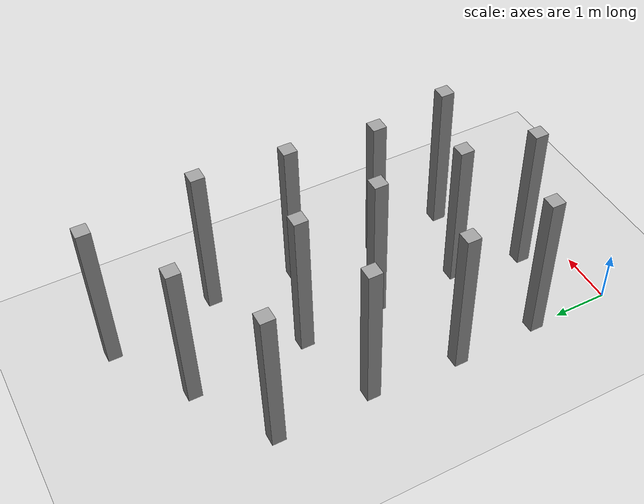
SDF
<sdf version="1.6">
 <world name="default">
  <model name="ground_plane">
   <static>1</static>
   <link name="link">
    <collision name="collision">
     <geometry><plane><normal>0 0 1</normal><size>100 100</size></plane></geometry>
     <surface><friction><ode><mu>100</mu><mu2>50</mu2></ode></friction></surface>
    </collision>
    <visual name="visual">
     <cast_shadows>0</cast_shadows>
     <geometry><plane><normal>0 0 1</normal><size>100 100</size></plane></geometry>
     <material>
      <script><uri>file://media/materials/scripts/gazebo.material</uri><name>Gazebo/Grey</name></script>
     </material>
    </visual>
   </link>
  </model>
  <model name="box_2_clone_1">
   <link name="link">
    <pose>0 0 1 0 -0 0</pose>
    <inertial>
     <mass>1</mass>
     <inertia><ixx>5.16667</ixx><ixy>0</ixy><ixz>0</ixz><iyy>5.16667</iyy><iyz>0</iyz><izz>5.16667</izz></inertia>
     <pose>0 0 1 0 -0 0</pose>
    </inertial>
    <visual name="ModelPreview_4::link::visual_1">
     <geometry><box><size>0.25 0.25 3</size></box></geometry>
     <material>
      <script><name>Gazebo/Grey</name><uri>file://media/materials/scripts/gazebo.material</uri></script>
      <ambient>0.3 0.3 0.3 1</ambient>
      <diffuse>0.7 0.7 0.7 1</diffuse>
      <specular>0.01 0.01 0.01 1</specular>
      <emissive>0 0 0 1</emissive>
      <shader type="vertex"><normal_map>__default__</normal_map></shader>
     </material>
    </visual>
    <visual name="visual">
     <geometry><box><size>0.25 0.25 3</size></box></geometry>
     <material>
      <script><name>Gazebo/Grey</name><uri>file://media/materials/scripts/gazebo.material</uri></script>
      <ambient>0.3 0.3 0.3 1</ambient>
      <diffuse>0.7 0.7 0.7 1</diffuse>
      <specular>0.01 0.01 0.01 1</specular>
      <emissive>0 0 0 1</emissive>
      <shader type="vertex"><normal_map>__default__</normal_map></shader>
     </material>
    </visual>
    <collision name="collision">
     <geometry><box><size>0.25 0.25 3</size></box></geometry>
     <surface>
      <friction>
       <ode><mu>1</mu><mu2>1</mu2><fdir1>0 0 0</fdir1><slip1>0</slip1><slip2>0</slip2></ode>
       <torsional>
        <coefficient>1</coefficient>
        <patch_radius>0</patch_radius>
        <surface_radius>0</surface_radius>
        <use_patch_radius>1</use_patch_radius>
        <ode><slip>0</slip></ode>
       </torsional>
      </friction>
      <bounce><restitution_coefficient>0</restitution_coefficient><threshold>1e+06</threshold></bounce>
      <contact>
       <collide_without_contact>0</collide_without_contact>
       <collide_without_contact_bitmask>1</collide_without_contact_bitmask>
       <collide_bitmask>1</collide_bitmask>
       <ode>
        <soft_cfm>0</soft_cfm>
        <soft_erp>0.2</soft_erp>
        <kp>1e+13</kp>
        <kd>1</kd>
        <max_vel>0.01</max_vel>
        <min_depth>0</min_depth>
       </ode>
       <bullet>
        <split_impulse>1</split_impulse>
        <split_impulse_penetration_threshold>-0.01</split_impulse_penetration_threshold>
        <soft_cfm>0</soft_cfm>
        <soft_erp>0.2</soft_erp>
        <kp>1e+13</kp>
        <kd>1</kd>
       </bullet>
      </contact>
     </surface>
    </collision>
   </link>
   <static>0</static>
   <pose>0.048313 1.49751 0.5 0 0 -0.000186</pose>
  </model>
  <model name="box_2_clone_2">
   <link name="link">
    <pose>0 0 1 0 -0 0</pose>
    <inertial>
     <mass>1</mass>
     <inertia><ixx>5.16667</ixx><ixy>0</ixy><ixz>0</ixz><iyy>5.16667</iyy><iyz>0</iyz><izz>5.16667</izz></inertia>
     <pose>0 0 1 0 -0 0</pose>
    </inertial>
    <visual name="ModelPreview_4::link::visual_1">
     <geometry><box><size>0.25 0.25 3</size></box></geometry>
     <material>
      <script><name>Gazebo/Grey</name><uri>file://media/materials/scripts/gazebo.material</uri></script>
      <ambient>0.3 0.3 0.3 1</ambient>
      <diffuse>0.7 0.7 0.7 1</diffuse>
      <specular>0.01 0.01 0.01 1</specular>
      <emissive>0 0 0 1</emissive>
      <shader type="vertex"><normal_map>__default__</normal_map></shader>
     </material>
    </visual>
    <visual name="visual">
     <geometry><box><size>0.25 0.25 3</size></box></geometry>
     <material>
      <script><name>Gazebo/Grey</name><uri>file://media/materials/scripts/gazebo.material</uri></script>
      <ambient>0.3 0.3 0.3 1</ambient>
      <diffuse>0.7 0.7 0.7 1</diffuse>
      <specular>0.01 0.01 0.01 1</specular>
      <emissive>0 0 0 1</emissive>
      <shader type="vertex"><normal_map>__default__</normal_map></shader>
     </material>
    </visual>
    <collision name="collision">
     <geometry><box><size>0.25 0.25 3</size></box></geometry>
     <surface>
      <friction>
       <ode><mu>1</mu><mu2>1</mu2><fdir1>0 0 0</fdir1><slip1>0</slip1><slip2>0</slip2></ode>
       <torsional>
        <coefficient>1</coefficient>
        <patch_radius>0</patch_radius>
        <surface_radius>0</surface_radius>
        <use_patch_radius>1</use_patch_radius>
        <ode><slip>0</slip></ode>
       </torsional>
      </friction>
      <bounce><restitution_coefficient>0</restitution_coefficient><threshold>1e+06</threshold></bounce>
      <contact>
       <collide_without_contact>0</collide_without_contact>
       <collide_without_contact_bitmask>1</collide_without_contact_bitmask>
       <collide_bitmask>1</collide_bitmask>
       <ode>
        <soft_cfm>0</soft_cfm>
        <soft_erp>0.2</soft_erp>
        <kp>1e+13</kp>
        <kd>1</kd>
        <max_vel>0.01</max_vel>
        <min_depth>0</min_depth>
       </ode>
       <bullet>
        <split_impulse>1</split_impulse>
        <split_impulse_penetration_threshold>-0.01</split_impulse_penetration_threshold>
        <soft_cfm>0</soft_cfm>
        <soft_erp>0.2</soft_erp>
        <kp>1e+13</kp>
        <kd>1</kd>
       </bullet>
      </contact>
     </surface>
    </collision>
   </link>
   <static>0</static>
   <pose>0.031845 3.07004 0.5 0 0 -0.000171</pose>
  </model>
  <model name="box_2_clone_3">
   <link name="link">
    <pose>0 0 1 0 -0 0</pose>
    <inertial>
     <mass>1</mass>
     <inertia><ixx>5.16667</ixx><ixy>0</ixy><ixz>0</ixz><iyy>5.16667</iyy><iyz>0</iyz><izz>5.16667</izz></inertia>
     <pose>0 0 1 0 -0 0</pose>
    </inertial>
    <visual name="ModelPreview_4::link::visual_1">
     <geometry><box><size>0.25 0.25 3</size></box></geometry>
     <material>
      <script><name>Gazebo/Grey</name><uri>file://media/materials/scripts/gazebo.material</uri></script>
      <ambient>0.3 0.3 0.3 1</ambient>
      <diffuse>0.7 0.7 0.7 1</diffuse>
      <specular>0.01 0.01 0.01 1</specular>
      <emissive>0 0 0 1</emissive>
      <shader type="vertex"><normal_map>__default__</normal_map></shader>
     </material>
    </visual>
    <visual name="visual">
     <geometry><box><size>0.25 0.25 3</size></box></geometry>
     <material>
      <script><name>Gazebo/Grey</name><uri>file://media/materials/scripts/gazebo.material</uri></script>
      <ambient>0.3 0.3 0.3 1</ambient>
      <diffuse>0.7 0.7 0.7 1</diffuse>
      <specular>0.01 0.01 0.01 1</specular>
      <emissive>0 0 0 1</emissive>
      <shader type="vertex"><normal_map>__default__</normal_map></shader>
     </material>
    </visual>
    <collision name="collision">
     <geometry><box><size>0.25 0.25 3</size></box></geometry>
     <surface>
      <friction>
       <ode><mu>1</mu><mu2>1</mu2><fdir1>0 0 0</fdir1><slip1>0</slip1><slip2>0</slip2></ode>
       <torsional>
        <coefficient>1</coefficient>
        <patch_radius>0</patch_radius>
        <surface_radius>0</surface_radius>
        <use_patch_radius>1</use_patch_radius>
        <ode><slip>0</slip></ode>
       </torsional>
      </friction>
      <bounce><restitution_coefficient>0</restitution_coefficient><threshold>1e+06</threshold></bounce>
      <contact>
       <collide_without_contact>0</collide_without_contact>
       <collide_without_contact_bitmask>1</collide_without_contact_bitmask>
       <collide_bitmask>1</collide_bitmask>
       <ode>
        <soft_cfm>0</soft_cfm>
        <soft_erp>0.2</soft_erp>
        <kp>1e+13</kp>
        <kd>1</kd>
        <max_vel>0.01</max_vel>
        <min_depth>0</min_depth>
       </ode>
       <bullet>
        <split_impulse>1</split_impulse>
        <split_impulse_penetration_threshold>-0.01</split_impulse_penetration_threshold>
        <soft_cfm>0</soft_cfm>
        <soft_erp>0.2</soft_erp>
        <kp>1e+13</kp>
        <kd>1</kd>
       </bullet>
      </contact>
     </surface>
    </collision>
   </link>
   <static>0</static>
   <pose>0.124936 4.72453 0.500001 1e-06 3e-06 -9.4e-05</pose>
  </model>
  <model name="box_2_clone_4">
   <link name="link">
    <pose>0 0 1 0 -0 0</pose>
    <inertial>
     <mass>1</mass>
     <inertia><ixx>5.16667</ixx><ixy>0</ixy><ixz>0</ixz><iyy>5.16667</iyy><iyz>0</iyz><izz>5.16667</izz></inertia>
     <pose>0 0 1 0 -0 0</pose>
    </inertial>
    <visual name="ModelPreview_4::link::visual_1">
     <geometry><box><size>0.25 0.25 3</size></box></geometry>
     <material>
      <script><name>Gazebo/Grey</name><uri>file://media/materials/scripts/gazebo.material</uri></script>
      <ambient>0.3 0.3 0.3 1</ambient>
      <diffuse>0.7 0.7 0.7 1</diffuse>
      <specular>0.01 0.01 0.01 1</specular>
      <emissive>0 0 0 1</emissive>
      <shader type="vertex"><normal_map>__default__</normal_map></shader>
     </material>
    </visual>
    <visual name="visual">
     <geometry><box><size>0.25 0.25 3</size></box></geometry>
     <material>
      <script><name>Gazebo/Grey</name><uri>file://media/materials/scripts/gazebo.material</uri></script>
      <ambient>0.3 0.3 0.3 1</ambient>
      <diffuse>0.7 0.7 0.7 1</diffuse>
      <specular>0.01 0.01 0.01 1</specular>
      <emissive>0 0 0 1</emissive>
      <shader type="vertex"><normal_map>__default__</normal_map></shader>
     </material>
    </visual>
    <collision name="collision">
     <geometry><box><size>0.25 0.25 3</size></box></geometry>
     <surface>
      <friction>
       <ode><mu>1</mu><mu2>1</mu2><fdir1>0 0 0</fdir1><slip1>0</slip1><slip2>0</slip2></ode>
       <torsional>
        <coefficient>1</coefficient>
        <patch_radius>0</patch_radius>
        <surface_radius>0</surface_radius>
        <use_patch_radius>1</use_patch_radius>
        <ode><slip>0</slip></ode>
       </torsional>
      </friction>
      <bounce><restitution_coefficient>0</restitution_coefficient><threshold>1e+06</threshold></bounce>
      <contact>
       <collide_without_contact>0</collide_without_contact>
       <collide_without_contact_bitmask>1</collide_without_contact_bitmask>
       <collide_bitmask>1</collide_bitmask>
       <ode>
        <soft_cfm>0</soft_cfm>
        <soft_erp>0.2</soft_erp>
        <kp>1e+13</kp>
        <kd>1</kd>
        <max_vel>0.01</max_vel>
        <min_depth>0</min_depth>
       </ode>
       <bullet>
        <split_impulse>1</split_impulse>
        <split_impulse_penetration_threshold>-0.01</split_impulse_penetration_threshold>
        <soft_cfm>0</soft_cfm>
        <soft_erp>0.2</soft_erp>
        <kp>1e+13</kp>
        <kd>1</kd>
       </bullet>
      </contact>
     </surface>
    </collision>
   </link>
   <static>0</static>
   <pose>0.097978 6.47985 0.5 1e-06 -2e-06 -0.000149</pose>
  </model>
  <model name="box_2_clone_1_clone">
   <link name="link">
    <pose>0 0 1 0 -0 0</pose>
    <inertial>
     <mass>1</mass>
     <inertia><ixx>5.16667</ixx><ixy>0</ixy><ixz>0</ixz><iyy>5.16667</iyy><iyz>0</iyz><izz>5.16667</izz></inertia>
     <pose>0 0 1 0 -0 0</pose>
    </inertial>
    <visual name="ModelPreview_4::link::visual_1">
     <geometry><box><size>0.25 0.25 3</size></box></geometry>
     <material>
      <script><name>Gazebo/Grey</name><uri>file://media/materials/scripts/gazebo.material</uri></script>
      <ambient>0.3 0.3 0.3 1</ambient>
      <diffuse>0.7 0.7 0.7 1</diffuse>
      <specular>0.01 0.01 0.01 1</specular>
      <emissive>0 0 0 1</emissive>
      <shader type="vertex"><normal_map>__default__</normal_map></shader>
     </material>
    </visual>
    <visual name="visual">
     <geometry><box><size>0.25 0.25 3</size></box></geometry>
     <material>
      <script><name>Gazebo/Grey</name><uri>file://media/materials/scripts/gazebo.material</uri></script>
      <ambient>0.3 0.3 0.3 1</ambient>
      <diffuse>0.7 0.7 0.7 1</diffuse>
      <specular>0.01 0.01 0.01 1</specular>
      <emissive>0 0 0 1</emissive>
      <shader type="vertex"><normal_map>__default__</normal_map></shader>
     </material>
    </visual>
    <collision name="collision">
     <geometry><box><size>0.25 0.25 3</size></box></geometry>
     <surface>
      <friction>
       <ode><mu>1</mu><mu2>1</mu2><fdir1>0 0 0</fdir1><slip1>0</slip1><slip2>0</slip2></ode>
       <torsional>
        <coefficient>1</coefficient>
        <patch_radius>0</patch_radius>
        <surface_radius>0</surface_radius>
        <use_patch_radius>1</use_patch_radius>
        <ode><slip>0</slip></ode>
       </torsional>
      </friction>
      <bounce><restitution_coefficient>0</restitution_coefficient><threshold>1e+06</threshold></bounce>
      <contact>
       <collide_without_contact>0</collide_without_contact>
       <collide_without_contact_bitmask>1</collide_without_contact_bitmask>
       <collide_bitmask>1</collide_bitmask>
       <ode>
        <soft_cfm>0</soft_cfm>
        <soft_erp>0.2</soft_erp>
        <kp>1e+13</kp>
        <kd>1</kd>
        <max_vel>0.01</max_vel>
        <min_depth>0</min_depth>
       </ode>
       <bullet>
        <split_impulse>1</split_impulse>
        <split_impulse_penetration_threshold>-0.01</split_impulse_penetration_threshold>
        <soft_cfm>0</soft_cfm>
        <soft_erp>0.2</soft_erp>
        <kp>1e+13</kp>
        <kd>1</kd>
       </bullet>
      </contact>
     </surface>
    </collision>
   </link>
   <static>0</static>
   <pose>1.77319 2.07182 0.5 1e-06 -0 -0.000176</pose>
  </model>
  <model name="box_2_clone_1_clone_0">
   <link name="link">
    <pose>0 0 1 0 -0 0</pose>
    <inertial>
     <mass>1</mass>
     <inertia><ixx>5.16667</ixx><ixy>0</ixy><ixz>0</ixz><iyy>5.16667</iyy><iyz>0</iyz><izz>5.16667</izz></inertia>
     <pose>0 0 1 0 -0 0</pose>
    </inertial>
    <visual name="ModelPreview_4::link::visual_1">
     <geometry><box><size>0.25 0.25 3</size></box></geometry>
     <material>
      <script><name>Gazebo/Grey</name><uri>file://media/materials/scripts/gazebo.material</uri></script>
      <ambient>0.3 0.3 0.3 1</ambient>
      <diffuse>0.7 0.7 0.7 1</diffuse>
      <specular>0.01 0.01 0.01 1</specular>
      <emissive>0 0 0 1</emissive>
      <shader type="vertex"><normal_map>__default__</normal_map></shader>
     </material>
    </visual>
    <visual name="visual">
     <geometry><box><size>0.25 0.25 3</size></box></geometry>
     <material>
      <script><name>Gazebo/Grey</name><uri>file://media/materials/scripts/gazebo.material</uri></script>
      <ambient>0.3 0.3 0.3 1</ambient>
      <diffuse>0.7 0.7 0.7 1</diffuse>
      <specular>0.01 0.01 0.01 1</specular>
      <emissive>0 0 0 1</emissive>
      <shader type="vertex"><normal_map>__default__</normal_map></shader>
     </material>
    </visual>
    <collision name="collision">
     <geometry><box><size>0.25 0.25 3</size></box></geometry>
     <surface>
      <friction>
       <ode><mu>1</mu><mu2>1</mu2><fdir1>0 0 0</fdir1><slip1>0</slip1><slip2>0</slip2></ode>
       <torsional>
        <coefficient>1</coefficient>
        <patch_radius>0</patch_radius>
        <surface_radius>0</surface_radius>
        <use_patch_radius>1</use_patch_radius>
        <ode><slip>0</slip></ode>
       </torsional>
      </friction>
      <bounce><restitution_coefficient>0</restitution_coefficient><threshold>1e+06</threshold></bounce>
      <contact>
       <collide_without_contact>0</collide_without_contact>
       <collide_without_contact_bitmask>1</collide_without_contact_bitmask>
       <collide_bitmask>1</collide_bitmask>
       <ode>
        <soft_cfm>0</soft_cfm>
        <soft_erp>0.2</soft_erp>
        <kp>1e+13</kp>
        <kd>1</kd>
        <max_vel>0.01</max_vel>
        <min_depth>0</min_depth>
       </ode>
       <bullet>
        <split_impulse>1</split_impulse>
        <split_impulse_penetration_threshold>-0.01</split_impulse_penetration_threshold>
        <soft_cfm>0</soft_cfm>
        <soft_erp>0.2</soft_erp>
        <kp>1e+13</kp>
        <kd>1</kd>
       </bullet>
      </contact>
     </surface>
    </collision>
   </link>
   <static>0</static>
   <pose>1.747 3.70529 0.5 -0 3e-06 -0.000185</pose>
  </model>
  <model name="box_2_clone_1_clone_1">
   <link name="link">
    <pose>0 0 1 0 -0 0</pose>
    <inertial>
     <mass>1</mass>
     <inertia><ixx>5.16667</ixx><ixy>0</ixy><ixz>0</ixz><iyy>5.16667</iyy><iyz>0</iyz><izz>5.16667</izz></inertia>
     <pose>0 0 1 0 -0 0</pose>
    </inertial>
    <visual name="ModelPreview_4::link::visual_1">
     <geometry><box><size>0.25 0.25 3</size></box></geometry>
     <material>
      <script><name>Gazebo/Grey</name><uri>file://media/materials/scripts/gazebo.material</uri></script>
      <ambient>0.3 0.3 0.3 1</ambient>
      <diffuse>0.7 0.7 0.7 1</diffuse>
      <specular>0.01 0.01 0.01 1</specular>
      <emissive>0 0 0 1</emissive>
      <shader type="vertex"><normal_map>__default__</normal_map></shader>
     </material>
    </visual>
    <visual name="visual">
     <geometry><box><size>0.25 0.25 3</size></box></geometry>
     <material>
      <script><name>Gazebo/Grey</name><uri>file://media/materials/scripts/gazebo.material</uri></script>
      <ambient>0.3 0.3 0.3 1</ambient>
      <diffuse>0.7 0.7 0.7 1</diffuse>
      <specular>0.01 0.01 0.01 1</specular>
      <emissive>0 0 0 1</emissive>
      <shader type="vertex"><normal_map>__default__</normal_map></shader>
     </material>
    </visual>
    <collision name="collision">
     <geometry><box><size>0.25 0.25 3</size></box></geometry>
     <surface>
      <friction>
       <ode><mu>1</mu><mu2>1</mu2><fdir1>0 0 0</fdir1><slip1>0</slip1><slip2>0</slip2></ode>
       <torsional>
        <coefficient>1</coefficient>
        <patch_radius>0</patch_radius>
        <surface_radius>0</surface_radius>
        <use_patch_radius>1</use_patch_radius>
        <ode><slip>0</slip></ode>
       </torsional>
      </friction>
      <bounce><restitution_coefficient>0</restitution_coefficient><threshold>1e+06</threshold></bounce>
      <contact>
       <collide_without_contact>0</collide_without_contact>
       <collide_without_contact_bitmask>1</collide_without_contact_bitmask>
       <collide_bitmask>1</collide_bitmask>
       <ode>
        <soft_cfm>0</soft_cfm>
        <soft_erp>0.2</soft_erp>
        <kp>1e+13</kp>
        <kd>1</kd>
        <max_vel>0.01</max_vel>
        <min_depth>0</min_depth>
       </ode>
       <bullet>
        <split_impulse>1</split_impulse>
        <split_impulse_penetration_threshold>-0.01</split_impulse_penetration_threshold>
        <soft_cfm>0</soft_cfm>
        <soft_erp>0.2</soft_erp>
        <kp>1e+13</kp>
        <kd>1</kd>
       </bullet>
      </contact>
     </surface>
    </collision>
   </link>
   <static>0</static>
   <pose>1.6256 5.19207 0.500001 -4e-06 -1e-06 -0.000196</pose>
  </model>
  <model name="box_2_clone_1_clone_2">
   <link name="link">
    <pose>0 0 1 0 -0 0</pose>
    <inertial>
     <mass>1</mass>
     <inertia><ixx>5.16667</ixx><ixy>0</ixy><ixz>0</ixz><iyy>5.16667</iyy><iyz>0</iyz><izz>5.16667</izz></inertia>
     <pose>0 0 1 0 -0 0</pose>
    </inertial>
    <visual name="ModelPreview_4::link::visual_1">
     <geometry><box><size>0.25 0.25 3</size></box></geometry>
     <material>
      <script><name>Gazebo/Grey</name><uri>file://media/materials/scripts/gazebo.material</uri></script>
      <ambient>0.3 0.3 0.3 1</ambient>
      <diffuse>0.7 0.7 0.7 1</diffuse>
      <specular>0.01 0.01 0.01 1</specular>
      <emissive>0 0 0 1</emissive>
      <shader type="vertex"><normal_map>__default__</normal_map></shader>
     </material>
    </visual>
    <visual name="visual">
     <geometry><box><size>0.25 0.25 3</size></box></geometry>
     <material>
      <script><name>Gazebo/Grey</name><uri>file://media/materials/scripts/gazebo.material</uri></script>
      <ambient>0.3 0.3 0.3 1</ambient>
      <diffuse>0.7 0.7 0.7 1</diffuse>
      <specular>0.01 0.01 0.01 1</specular>
      <emissive>0 0 0 1</emissive>
      <shader type="vertex"><normal_map>__default__</normal_map></shader>
     </material>
    </visual>
    <collision name="collision">
     <geometry><box><size>0.25 0.25 3</size></box></geometry>
     <surface>
      <friction>
       <ode><mu>1</mu><mu2>1</mu2><fdir1>0 0 0</fdir1><slip1>0</slip1><slip2>0</slip2></ode>
       <torsional>
        <coefficient>1</coefficient>
        <patch_radius>0</patch_radius>
        <surface_radius>0</surface_radius>
        <use_patch_radius>1</use_patch_radius>
        <ode><slip>0</slip></ode>
       </torsional>
      </friction>
      <bounce><restitution_coefficient>0</restitution_coefficient><threshold>1e+06</threshold></bounce>
      <contact>
       <collide_without_contact>0</collide_without_contact>
       <collide_without_contact_bitmask>1</collide_without_contact_bitmask>
       <collide_bitmask>1</collide_bitmask>
       <ode>
        <soft_cfm>0</soft_cfm>
        <soft_erp>0.2</soft_erp>
        <kp>1e+13</kp>
        <kd>1</kd>
        <max_vel>0.01</max_vel>
        <min_depth>0</min_depth>
       </ode>
       <bullet>
        <split_impulse>1</split_impulse>
        <split_impulse_penetration_threshold>-0.01</split_impulse_penetration_threshold>
        <soft_cfm>0</soft_cfm>
        <soft_erp>0.2</soft_erp>
        <kp>1e+13</kp>
        <kd>1</kd>
       </bullet>
      </contact>
     </surface>
    </collision>
   </link>
   <static>0</static>
   <pose>1.52668 0.763108 0.5 0 0 -0.000189</pose>
  </model>
  <model name="box_2_clone_1_clone_8">
   <link name="link">
    <pose>0 0 1 0 -0 0</pose>
    <inertial>
     <mass>1</mass>
     <inertia><ixx>5.16667</ixx><ixy>0</ixy><ixz>0</ixz><iyy>5.16667</iyy><iyz>0</iyz><izz>5.16667</izz></inertia>
     <pose>0 0 1 0 -0 0</pose>
    </inertial>
    <visual name="ModelPreview_4::link::visual_1">
     <geometry><box><size>0.25 0.25 3</size></box></geometry>
     <material>
      <script><name>Gazebo/Grey</name><uri>file://media/materials/scripts/gazebo.material</uri></script>
      <ambient>0.3 0.3 0.3 1</ambient>
      <diffuse>0.7 0.7 0.7 1</diffuse>
      <specular>0.01 0.01 0.01 1</specular>
      <emissive>0 0 0 1</emissive>
      <shader type="vertex"><normal_map>__default__</normal_map></shader>
     </material>
    </visual>
    <visual name="visual">
     <geometry><box><size>0.25 0.25 3</size></box></geometry>
     <material>
      <script><name>Gazebo/Grey</name><uri>file://media/materials/scripts/gazebo.material</uri></script>
      <ambient>0.3 0.3 0.3 1</ambient>
      <diffuse>0.7 0.7 0.7 1</diffuse>
      <specular>0.01 0.01 0.01 1</specular>
      <emissive>0 0 0 1</emissive>
      <shader type="vertex"><normal_map>__default__</normal_map></shader>
     </material>
    </visual>
    <collision name="collision">
     <geometry><box><size>0.25 0.25 3</size></box></geometry>
     <surface>
      <friction>
       <ode><mu>1</mu><mu2>1</mu2><fdir1>0 0 0</fdir1><slip1>0</slip1><slip2>0</slip2></ode>
       <torsional>
        <coefficient>1</coefficient>
        <patch_radius>0</patch_radius>
        <surface_radius>0</surface_radius>
        <use_patch_radius>1</use_patch_radius>
        <ode><slip>0</slip></ode>
       </torsional>
      </friction>
      <bounce><restitution_coefficient>0</restitution_coefficient><threshold>1e+06</threshold></bounce>
      <contact>
       <collide_without_contact>0</collide_without_contact>
       <collide_without_contact_bitmask>1</collide_without_contact_bitmask>
       <collide_bitmask>1</collide_bitmask>
       <ode>
        <soft_cfm>0</soft_cfm>
        <soft_erp>0.2</soft_erp>
        <kp>1e+13</kp>
        <kd>1</kd>
        <max_vel>0.01</max_vel>
        <min_depth>0</min_depth>
       </ode>
       <bullet>
        <split_impulse>1</split_impulse>
        <split_impulse_penetration_threshold>-0.01</split_impulse_penetration_threshold>
        <soft_cfm>0</soft_cfm>
        <soft_erp>0.2</soft_erp>
        <kp>1e+13</kp>
        <kd>1</kd>
       </bullet>
      </contact>
     </surface>
    </collision>
   </link>
   <static>0</static>
   <pose>1.54617 7.31486 0.5 0 -1e-06 -0.000184</pose>
  </model>
  <model name="box_2_clone_1_clone_14">
   <link name="link">
    <pose>0 0 1 0 -0 0</pose>
    <inertial>
     <mass>1</mass>
     <inertia><ixx>5.16667</ixx><ixy>0</ixy><ixz>0</ixz><iyy>5.16667</iyy><iyz>0</iyz><izz>5.16667</izz></inertia>
     <pose>0 0 1 0 -0 0</pose>
    </inertial>
    <visual name="ModelPreview_4::link::visual_1">
     <geometry><box><size>0.25 0.25 3</size></box></geometry>
     <material>
      <script><name>Gazebo/Grey</name><uri>file://media/materials/scripts/gazebo.material</uri></script>
      <ambient>0.3 0.3 0.3 1</ambient>
      <diffuse>0.7 0.7 0.7 1</diffuse>
      <specular>0.01 0.01 0.01 1</specular>
      <emissive>0 0 0 1</emissive>
      <shader type="vertex"><normal_map>__default__</normal_map></shader>
     </material>
    </visual>
    <visual name="visual">
     <geometry><box><size>0.25 0.25 3</size></box></geometry>
     <material>
      <script><name>Gazebo/Grey</name><uri>file://media/materials/scripts/gazebo.material</uri></script>
      <ambient>0.3 0.3 0.3 1</ambient>
      <diffuse>0.7 0.7 0.7 1</diffuse>
      <specular>0.01 0.01 0.01 1</specular>
      <emissive>0 0 0 1</emissive>
      <shader type="vertex"><normal_map>__default__</normal_map></shader>
     </material>
    </visual>
    <collision name="collision">
     <geometry><box><size>0.25 0.25 3</size></box></geometry>
     <surface>
      <friction>
       <ode><mu>1</mu><mu2>1</mu2><fdir1>0 0 0</fdir1><slip1>0</slip1><slip2>0</slip2></ode>
       <torsional>
        <coefficient>1</coefficient>
        <patch_radius>0</patch_radius>
        <surface_radius>0</surface_radius>
        <use_patch_radius>1</use_patch_radius>
        <ode><slip>0</slip></ode>
       </torsional>
      </friction>
      <bounce><restitution_coefficient>0</restitution_coefficient><threshold>1e+06</threshold></bounce>
      <contact>
       <collide_without_contact>0</collide_without_contact>
       <collide_without_contact_bitmask>1</collide_without_contact_bitmask>
       <collide_bitmask>1</collide_bitmask>
       <ode>
        <soft_cfm>0</soft_cfm>
        <soft_erp>0.2</soft_erp>
        <kp>1e+13</kp>
        <kd>1</kd>
        <max_vel>0.01</max_vel>
        <min_depth>0</min_depth>
       </ode>
       <bullet>
        <split_impulse>1</split_impulse>
        <split_impulse_penetration_threshold>-0.01</split_impulse_penetration_threshold>
        <soft_cfm>0</soft_cfm>
        <soft_erp>0.2</soft_erp>
        <kp>1e+13</kp>
        <kd>1</kd>
       </bullet>
      </contact>
     </surface>
    </collision>
   </link>
   <static>0</static>
   <pose>3.22169 1.54591 0.5 0 0 -0.000156</pose>
  </model>
  <model name="box_2_clone_1_clone_15">
   <link name="link">
    <pose>0 0 1 0 -0 0</pose>
    <inertial>
     <mass>1</mass>
     <inertia><ixx>5.16667</ixx><ixy>0</ixy><ixz>0</ixz><iyy>5.16667</iyy><iyz>0</iyz><izz>5.16667</izz></inertia>
     <pose>0 0 1 0 -0 0</pose>
    </inertial>
    <visual name="ModelPreview_4::link::visual_1">
     <geometry><box><size>0.25 0.25 3</size></box></geometry>
     <material>
      <script><name>Gazebo/Grey</name><uri>file://media/materials/scripts/gazebo.material</uri></script>
      <ambient>0.3 0.3 0.3 1</ambient>
      <diffuse>0.7 0.7 0.7 1</diffuse>
      <specular>0.01 0.01 0.01 1</specular>
      <emissive>0 0 0 1</emissive>
      <shader type="vertex"><normal_map>__default__</normal_map></shader>
     </material>
    </visual>
    <visual name="visual">
     <geometry><box><size>0.25 0.25 3</size></box></geometry>
     <material>
      <script><name>Gazebo/Grey</name><uri>file://media/materials/scripts/gazebo.material</uri></script>
      <ambient>0.3 0.3 0.3 1</ambient>
      <diffuse>0.7 0.7 0.7 1</diffuse>
      <specular>0.01 0.01 0.01 1</specular>
      <emissive>0 0 0 1</emissive>
      <shader type="vertex"><normal_map>__default__</normal_map></shader>
     </material>
    </visual>
    <collision name="collision">
     <geometry><box><size>0.25 0.25 3</size></box></geometry>
     <surface>
      <friction>
       <ode><mu>1</mu><mu2>1</mu2><fdir1>0 0 0</fdir1><slip1>0</slip1><slip2>0</slip2></ode>
       <torsional>
        <coefficient>1</coefficient>
        <patch_radius>0</patch_radius>
        <surface_radius>0</surface_radius>
        <use_patch_radius>1</use_patch_radius>
        <ode><slip>0</slip></ode>
       </torsional>
      </friction>
      <bounce><restitution_coefficient>0</restitution_coefficient><threshold>1e+06</threshold></bounce>
      <contact>
       <collide_without_contact>0</collide_without_contact>
       <collide_without_contact_bitmask>1</collide_without_contact_bitmask>
       <collide_bitmask>1</collide_bitmask>
       <ode>
        <soft_cfm>0</soft_cfm>
        <soft_erp>0.2</soft_erp>
        <kp>1e+13</kp>
        <kd>1</kd>
        <max_vel>0.01</max_vel>
        <min_depth>0</min_depth>
       </ode>
       <bullet>
        <split_impulse>1</split_impulse>
        <split_impulse_penetration_threshold>-0.01</split_impulse_penetration_threshold>
        <soft_cfm>0</soft_cfm>
        <soft_erp>0.2</soft_erp>
        <kp>1e+13</kp>
        <kd>1</kd>
       </bullet>
      </contact>
     </surface>
    </collision>
   </link>
   <static>0</static>
   <pose>2.98701 3.03263 0.5 1e-06 0 -0.000181</pose>
  </model>
  <model name="box_2_clone_1_clone_16">
   <link name="link">
    <pose>0 0 1 0 -0 0</pose>
    <inertial>
     <mass>1</mass>
     <inertia><ixx>5.16667</ixx><ixy>0</ixy><ixz>0</ixz><iyy>5.16667</iyy><iyz>0</iyz><izz>5.16667</izz></inertia>
     <pose>0 0 1 0 -0 0</pose>
    </inertial>
    <visual name="ModelPreview_4::link::visual_1">
     <geometry><box><size>0.25 0.25 3</size></box></geometry>
     <material>
      <script><name>Gazebo/Grey</name><uri>file://media/materials/scripts/gazebo.material</uri></script>
      <ambient>0.3 0.3 0.3 1</ambient>
      <diffuse>0.7 0.7 0.7 1</diffuse>
      <specular>0.01 0.01 0.01 1</specular>
      <emissive>0 0 0 1</emissive>
      <shader type="vertex"><normal_map>__default__</normal_map></shader>
     </material>
    </visual>
    <visual name="visual">
     <geometry><box><size>0.25 0.25 3</size></box></geometry>
     <material>
      <script><name>Gazebo/Grey</name><uri>file://media/materials/scripts/gazebo.material</uri></script>
      <ambient>0.3 0.3 0.3 1</ambient>
      <diffuse>0.7 0.7 0.7 1</diffuse>
      <specular>0.01 0.01 0.01 1</specular>
      <emissive>0 0 0 1</emissive>
      <shader type="vertex"><normal_map>__default__</normal_map></shader>
     </material>
    </visual>
    <collision name="collision">
     <geometry><box><size>0.25 0.25 3</size></box></geometry>
     <surface>
      <friction>
       <ode><mu>1</mu><mu2>1</mu2><fdir1>0 0 0</fdir1><slip1>0</slip1><slip2>0</slip2></ode>
       <torsional>
        <coefficient>1</coefficient>
        <patch_radius>0</patch_radius>
        <surface_radius>0</surface_radius>
        <use_patch_radius>1</use_patch_radius>
        <ode><slip>0</slip></ode>
       </torsional>
      </friction>
      <bounce><restitution_coefficient>0</restitution_coefficient><threshold>1e+06</threshold></bounce>
      <contact>
       <collide_without_contact>0</collide_without_contact>
       <collide_without_contact_bitmask>1</collide_without_contact_bitmask>
       <collide_bitmask>1</collide_bitmask>
       <ode>
        <soft_cfm>0</soft_cfm>
        <soft_erp>0.2</soft_erp>
        <kp>1e+13</kp>
        <kd>1</kd>
        <max_vel>0.01</max_vel>
        <min_depth>0</min_depth>
       </ode>
       <bullet>
        <split_impulse>1</split_impulse>
        <split_impulse_penetration_threshold>-0.01</split_impulse_penetration_threshold>
        <soft_cfm>0</soft_cfm>
        <soft_erp>0.2</soft_erp>
        <kp>1e+13</kp>
        <kd>1</kd>
       </bullet>
      </contact>
     </surface>
    </collision>
   </link>
   <static>0</static>
   <pose>3.15684 4.61629 0.500002 1e-06 1.8e-05 -0.00017</pose>
  </model>
  <model name="box_2_clone_1_clone_17">
   <link name="link">
    <pose>0 0 1 0 -0 0</pose>
    <inertial>
     <mass>1</mass>
     <inertia><ixx>5.16667</ixx><ixy>0</ixy><ixz>0</ixz><iyy>5.16667</iyy><iyz>0</iyz><izz>5.16667</izz></inertia>
     <pose>0 0 1 0 -0 0</pose>
    </inertial>
    <visual name="ModelPreview_4::link::visual_1">
     <geometry><box><size>0.25 0.25 3</size></box></geometry>
     <material>
      <script><name>Gazebo/Grey</name><uri>file://media/materials/scripts/gazebo.material</uri></script>
      <ambient>0.3 0.3 0.3 1</ambient>
      <diffuse>0.7 0.7 0.7 1</diffuse>
      <specular>0.01 0.01 0.01 1</specular>
      <emissive>0 0 0 1</emissive>
      <shader type="vertex"><normal_map>__default__</normal_map></shader>
     </material>
    </visual>
    <visual name="visual">
     <geometry><box><size>0.25 0.25 3</size></box></geometry>
     <material>
      <script><name>Gazebo/Grey</name><uri>file://media/materials/scripts/gazebo.material</uri></script>
      <ambient>0.3 0.3 0.3 1</ambient>
      <diffuse>0.7 0.7 0.7 1</diffuse>
      <specular>0.01 0.01 0.01 1</specular>
      <emissive>0 0 0 1</emissive>
      <shader type="vertex"><normal_map>__default__</normal_map></shader>
     </material>
    </visual>
    <collision name="collision">
     <geometry><box><size>0.25 0.25 3</size></box></geometry>
     <surface>
      <friction>
       <ode><mu>1</mu><mu2>1</mu2><fdir1>0 0 0</fdir1><slip1>0</slip1><slip2>0</slip2></ode>
       <torsional>
        <coefficient>1</coefficient>
        <patch_radius>0</patch_radius>
        <surface_radius>0</surface_radius>
        <use_patch_radius>1</use_patch_radius>
        <ode><slip>0</slip></ode>
       </torsional>
      </friction>
      <bounce><restitution_coefficient>0</restitution_coefficient><threshold>1e+06</threshold></bounce>
      <contact>
       <collide_without_contact>0</collide_without_contact>
       <collide_without_contact_bitmask>1</collide_without_contact_bitmask>
       <collide_bitmask>1</collide_bitmask>
       <ode>
        <soft_cfm>0</soft_cfm>
        <soft_erp>0.2</soft_erp>
        <kp>1e+13</kp>
        <kd>1</kd>
        <max_vel>0.01</max_vel>
        <min_depth>0</min_depth>
       </ode>
       <bullet>
        <split_impulse>1</split_impulse>
        <split_impulse_penetration_threshold>-0.01</split_impulse_penetration_threshold>
        <soft_cfm>0</soft_cfm>
        <soft_erp>0.2</soft_erp>
        <kp>1e+13</kp>
        <kd>1</kd>
       </bullet>
      </contact>
     </surface>
    </collision>
   </link>
   <static>0</static>
   <pose>3.29544 6.19424 0.500003 -1e-06 -2.3e-05 -0.000166</pose>
  </model>
  <model name="box_2_clone_1_clone_18">
   <link name="link">
    <pose>0 0 1 0 -0 0</pose>
    <inertial>
     <mass>1</mass>
     <inertia><ixx>5.16667</ixx><ixy>0</ixy><ixz>0</ixz><iyy>5.16667</iyy><iyz>0</iyz><izz>5.16667</izz></inertia>
     <pose>0 0 1 0 -0 0</pose>
    </inertial>
    <visual name="ModelPreview_4::link::visual_1">
     <geometry><box><size>0.25 0.25 3</size></box></geometry>
     <material>
      <script><name>Gazebo/Grey</name><uri>file://media/materials/scripts/gazebo.material</uri></script>
      <ambient>0.3 0.3 0.3 1</ambient>
      <diffuse>0.7 0.7 0.7 1</diffuse>
      <specular>0.01 0.01 0.01 1</specular>
      <emissive>0 0 0 1</emissive>
      <shader type="vertex"><normal_map>__default__</normal_map></shader>
     </material>
    </visual>
    <visual name="visual">
     <geometry><box><size>0.25 0.25 3</size></box></geometry>
     <material>
      <script><name>Gazebo/Grey</name><uri>file://media/materials/scripts/gazebo.material</uri></script>
      <ambient>0.3 0.3 0.3 1</ambient>
      <diffuse>0.7 0.7 0.7 1</diffuse>
      <specular>0.01 0.01 0.01 1</specular>
      <emissive>0 0 0 1</emissive>
      <shader type="vertex"><normal_map>__default__</normal_map></shader>
     </material>
    </visual>
    <collision name="collision">
     <geometry><box><size>0.25 0.25 3</size></box></geometry>
     <surface>
      <friction>
       <ode><mu>1</mu><mu2>1</mu2><fdir1>0 0 0</fdir1><slip1>0</slip1><slip2>0</slip2></ode>
       <torsional>
        <coefficient>1</coefficient>
        <patch_radius>0</patch_radius>
        <surface_radius>0</surface_radius>
        <use_patch_radius>1</use_patch_radius>
        <ode><slip>0</slip></ode>
       </torsional>
      </friction>
      <bounce><restitution_coefficient>0</restitution_coefficient><threshold>1e+06</threshold></bounce>
      <contact>
       <collide_without_contact>0</collide_without_contact>
       <collide_without_contact_bitmask>1</collide_without_contact_bitmask>
       <collide_bitmask>1</collide_bitmask>
       <ode>
        <soft_cfm>0</soft_cfm>
        <soft_erp>0.2</soft_erp>
        <kp>1e+13</kp>
        <kd>1</kd>
        <max_vel>0.01</max_vel>
        <min_depth>0</min_depth>
       </ode>
       <bullet>
        <split_impulse>1</split_impulse>
        <split_impulse_penetration_threshold>-0.01</split_impulse_penetration_threshold>
        <soft_cfm>0</soft_cfm>
        <soft_erp>0.2</soft_erp>
        <kp>1e+13</kp>
        <kd>1</kd>
       </bullet>
      </contact>
     </surface>
    </collision>
   </link>
   <static>0</static>
   <pose>2.97334 8.19644 0.500004 -1e-06 -3.1e-05 -0.000166</pose>
  </model>
 </world>
</sdf>
